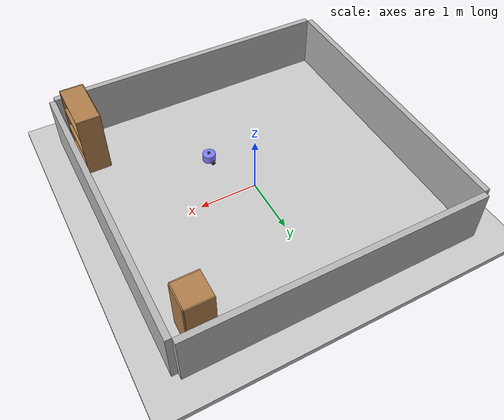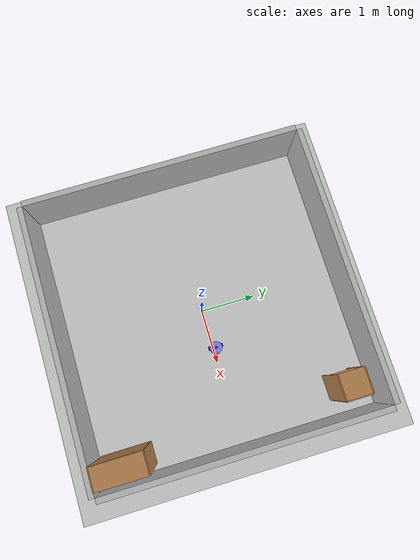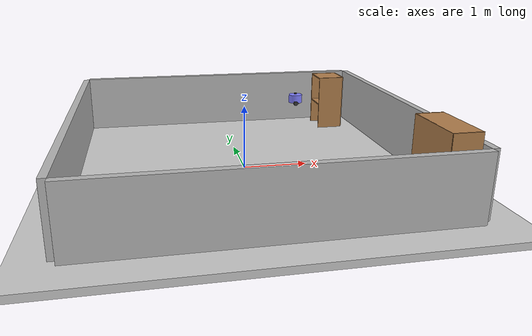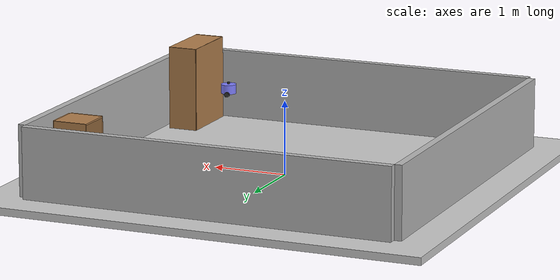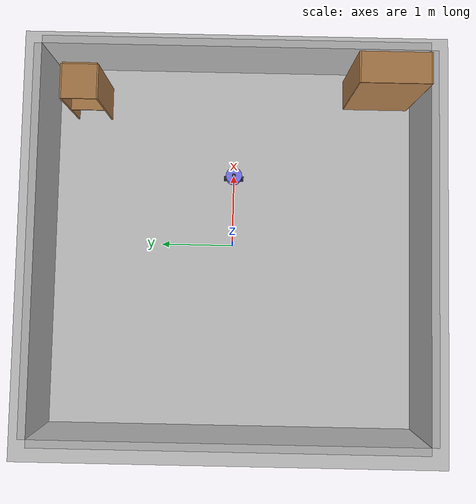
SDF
<sdf version="1.9">
 <world name="amazeworld">
  <physics name="1ms" type="ignored">
   <max_step_size>0.001</max_step_size>
   <real_time_factor>1.0</real_time_factor>
  </physics>
  <plugin filename="ignition-gazebo-physics-system" name="gz::sim::systems::Physics"/>
  <plugin filename="ignition-gazebo-sensors-system" name="gz::sim::systems::Sensors">
   <render_engine>ogre2</render_engine>
  </plugin>
  <plugin filename="ignition-gazebo-scene-broadcaster-system" name="gz::sim::systems::SceneBroadcaster"/>
  <light type="directional" name="sun">
   <pose>0 0 10 0 0 0</pose>
   <diffuse>0.8 0.8 0.8 1</diffuse>
   <specular>0.2 0.2 0.2 1</specular>
   <attenuation>
    <range>1000</range>
    <constant>0.9</constant>
    <linear>0.01</linear>
    <quadratic>0.001</quadratic>
   </attenuation>
   <direction>-0.5 0.1 -0.9</direction>
  </light>
  <model name="ground_plane">
   <static>true</static>
   <link name="link">
    <collision name="collision"><geometry><box><size>20 20 0.1</size></box></geometry></collision>
    <visual name="visual">
     <geometry><box><size>20 20 0.1</size></box></geometry>
     <material>
      <ambient>0.8 0.8 0.8 1</ambient>
      <diffuse>0.8 0.8 0.8 1</diffuse>
      <specular>0.8 0.8 0.8 1</specular>
     </material>
    </visual>
   </link>
  </model>
  <model name="Bookshelf">
   <static>1</static>
   <link name="link">
    <inertial><mass>1</mass></inertial>
    <collision name="back">
     <pose>0 0.005 0.6 0 -0 0</pose>
     <geometry><box><size>0.9 0.01 1.2</size></box></geometry>
    </collision>
    <visual name="visual1">
     <pose>0 0.005 0.6 0 -0 0</pose>
     <geometry><box><size>0.9 0.01 1.2</size></box></geometry>
     <material>
      <diffuse>1 1 1 1</diffuse>
      <script><uri>file://media/materials/scripts/gazebo.material</uri><name>Gazebo/Wood</name></script>
      <pbr>
       <metal>
        <albedo_map>https://fuel.gazebosim.org/1.0/openrobotics/models/bookshelf/3/files/bookshelf_diffuse.jpg</albedo_map>
       </metal>
      </pbr>
     </material>
    </visual>
    <collision name="left_side">
     <pose>0.45 -0.195 0.6 0 -0 0</pose>
     <geometry><box><size>0.02 0.4 1.2</size></box></geometry>
    </collision>
    <visual name="visual2">
     <pose>0.45 -0.195 0.6 0 -0 0</pose>
     <geometry><box><size>0.02 0.4 1.2</size></box></geometry>
     <material>
      <diffuse>1 1 1 1</diffuse>
      <script><uri>file://media/materials/scripts/gazebo.material</uri><name>Gazebo/Wood</name></script>
      <pbr>
       <metal>
        <albedo_map>https://fuel.gazebosim.org/1.0/openrobotics/models/bookshelf/3/files/bookshelf_diffuse.jpg</albedo_map>
       </metal>
      </pbr>
     </material>
    </visual>
    <collision name="right_side">
     <pose>-0.45 -0.195 0.6 0 -0 0</pose>
     <geometry><box><size>0.02 0.4 1.2</size></box></geometry>
    </collision>
    <visual name="visual3">
     <pose>-0.45 -0.195 0.6 0 -0 0</pose>
     <geometry><box><size>0.02 0.4 1.2</size></box></geometry>
     <material>
      <diffuse>1 1 1 1</diffuse>
      <script><uri>file://media/materials/scripts/gazebo.material</uri><name>Gazebo/Wood</name></script>
      <pbr>
       <metal>
        <albedo_map>https://fuel.gazebosim.org/1.0/openrobotics/models/bookshelf/3/files/bookshelf_diffuse.jpg</albedo_map>
       </metal>
      </pbr>
     </material>
    </visual>
    <collision name="bottom">
     <pose>0 -0.195 0.03 0 -0 0</pose>
     <geometry><box><size>0.88 0.4 0.06</size></box></geometry>
    </collision>
    <visual name="visual4">
     <pose>0 -0.195 0.03 0 -0 0</pose>
     <geometry><box><size>0.88 0.4 0.06</size></box></geometry>
     <material>
      <diffuse>1 1 1 1</diffuse>
      <script><uri>file://media/materials/scripts/gazebo.material</uri><name>Gazebo/Wood</name></script>
      <pbr>
       <metal>
        <albedo_map>https://fuel.gazebosim.org/1.0/openrobotics/models/bookshelf/3/files/bookshelf_diffuse.jpg</albedo_map>
       </metal>
      </pbr>
     </material>
    </visual>
    <collision name="top">
     <pose>0 -0.195 1.19 0 -0 0</pose>
     <geometry><box><size>0.88 0.4 0.02</size></box></geometry>
    </collision>
    <visual name="visual5">
     <pose>0 -0.195 1.19 0 -0 0</pose>
     <geometry><box><size>0.88 0.4 0.02</size></box></geometry>
     <material>
      <diffuse>1 1 1 1</diffuse>
      <script><uri>file://media/materials/scripts/gazebo.material</uri><name>Gazebo/Wood</name></script>
      <pbr>
       <metal>
        <albedo_map>https://fuel.gazebosim.org/1.0/openrobotics/models/bookshelf/3/files/bookshelf_diffuse.jpg</albedo_map>
       </metal>
      </pbr>
     </material>
    </visual>
    <collision name="low_shelf">
     <pose>0 -0.195 0.43 0 -0 0</pose>
     <geometry><box><size>0.88 0.4 0.02</size></box></geometry>
    </collision>
    <visual name="visual6">
     <pose>0 -0.195 0.43 0 -0 0</pose>
     <geometry><box><size>0.88 0.4 0.02</size></box></geometry>
     <material>
      <diffuse>1 1 1 1</diffuse>
      <script><uri>file://media/materials/scripts/gazebo.material</uri><name>Gazebo/Wood</name></script>
      <pbr>
       <metal>
        <albedo_map>https://fuel.gazebosim.org/1.0/openrobotics/models/bookshelf/3/files/bookshelf_diffuse.jpg</albedo_map>
       </metal>
      </pbr>
     </material>
    </visual>
    <collision name="high_shelf">
     <pose>0 -0.195 0.8 0 -0 0</pose>
     <geometry><box><size>0.88 0.4 0.02</size></box></geometry>
    </collision>
    <visual name="visual7">
     <pose>0 -0.195 0.8 0 -0 0</pose>
     <geometry><box><size>0.88 0.4 0.02</size></box></geometry>
     <material>
      <diffuse>1 1 1 1</diffuse>
      <script><uri>file://media/materials/scripts/gazebo.material</uri><name>Gazebo/Wood</name></script>
      <pbr>
       <metal>
        <albedo_map>https://fuel.gazebosim.org/1.0/openrobotics/models/bookshelf/3/files/bookshelf_diffuse.jpg</albedo_map>
       </metal>
      </pbr>
     </material>
    </visual>
   </link>
   <pose>2.0 -2.0 0 0 -0 1.5708</pose>
  </model>
  <model name="cabinet">
   <static>1</static>
   <link name="cabinet_bottom_plate">
    <inertial>
     <pose>0 0 -1 0 -0 0</pose>
     <inertia><ixx>2.05</ixx><ixy>0</ixy><ixz>0</ixz><iyy>2.05</iyy><iyz>0</iyz><izz>2.05</izz></inertia>
     <mass>25</mass>
    </inertial>
    <collision name="cabinet_bottom_plate_geom">
     <pose>0 0 0.01 0 -0 0</pose>
     <geometry><box><size>0.45 0.45 0.02</size></box></geometry>
    </collision>
    <visual name="cabinet_bottom_plate_geom_visual">
     <pose>0 0 0.01 0 -0 0</pose>
     <geometry><box><size>0.45 0.45 0.02</size></box></geometry>
     <material>
      <script><uri>file://media/materials/scripts/gazebo.material</uri><name>Gazebo/Wood</name></script>
     </material>
    </visual>
    <collision name="cabinet_bottom_plate_geom_cabinet_back_plate">
     <pose>0.235 0 0.51 0 -0 0</pose>
     <geometry><box><size>0.02 0.45 1.02</size></box></geometry>
    </collision>
    <visual name="cabinet_bottom_plate_geom_cabinet_back_plate_visual">
     <pose>0.235 0 0.51 0 -0 0</pose>
     <geometry><box><size>0.02 0.45 1.02</size></box></geometry>
     <material>
      <script><uri>file://media/materials/scripts/gazebo.material</uri><name>Gazebo/Wood</name></script>
     </material>
    </visual>
    <collision name="cabinet_bottom_plate_geom_cabinet_left_plate">
     <pose>0 0.235 0.51 0 -0 0</pose>
     <geometry><box><size>0.45 0.02 1.02</size></box></geometry>
    </collision>
    <visual name="cabinet_bottom_plate_geom_cabinet_left_plate_visual">
     <pose>0 0.235 0.51 0 -0 0</pose>
     <geometry><box><size>0.45 0.02 1.02</size></box></geometry>
     <material>
      <script><uri>file://media/materials/scripts/gazebo.material</uri><name>Gazebo/Wood</name></script>
     </material>
    </visual>
    <collision name="cabinet_bottom_plate_geom_cabinet_middle_plate">
     <pose>0 0 0.51 0 -0 0</pose>
     <geometry><box><size>0.45 0.45 0.02</size></box></geometry>
    </collision>
    <visual name="cabinet_bottom_plate_geom_cabinet_middle_plate_visual">
     <pose>0 0 0.51 0 -0 0</pose>
     <geometry><box><size>0.45 0.45 0.02</size></box></geometry>
     <material>
      <script><uri>file://media/materials/scripts/gazebo.material</uri><name>Gazebo/Wood</name></script>
     </material>
    </visual>
    <collision name="cabinet_bottom_plate_geom_cabinet_right_plate">
     <pose>0 -0.235 0.51 0 -0 0</pose>
     <geometry><box><size>0.45 0.02 1.02</size></box></geometry>
    </collision>
    <visual name="cabinet_bottom_plate_geom_cabinet_right_plate_visual">
     <pose>0 -0.235 0.51 0 -0 0</pose>
     <geometry><box><size>0.45 0.02 1.02</size></box></geometry>
     <material>
      <script><uri>file://media/materials/scripts/gazebo.material</uri><name>Gazebo/Wood</name></script>
     </material>
    </visual>
    <collision name="cabinet_bottom_plate_geom_cabinet_top_plate">
     <pose>0 0 1.01 0 -0 0</pose>
     <geometry><box><size>0.45 0.45 0.02</size></box></geometry>
    </collision>
    <visual name="cabinet_bottom_plate_geom_cabinet_top_plate_visual">
     <pose>0 0 1.01 0 -0 0</pose>
     <geometry><box><size>0.45 0.45 0.02</size></box></geometry>
     <material>
      <script><uri>file://media/materials/scripts/gazebo.material</uri><name>Gazebo/Wood</name></script>
     </material>
    </visual>
   </link>
   <pose>2.0 2.0 0 0 -0 0</pose>
  </model>
  <model name="room_wall_2x5">
   <link name="link">
    <visual name="visual">
     <geometry><box><size>0.1 5 1</size></box></geometry>
     <material>
      <script>
       <uri>https://fuel.gazebosim.org/1.0/makerspet/models/room_wall_2x5m/1/files/material/script</uri>
       <uri>https://fuel.gazebosim.org/1.0/makerspet/models/room_wall_2x5m/1/files/material/textures</uri>
       <name>Custom/room_wall_2x5</name>
      </script>
     </material>
    </visual>
    <collision name="collision"><geometry><box><size>0.1 5 2</size></box></geometry></collision>
   </link>
   <static>1</static>
   <pose>-2.55 0.0 0.5 0 -0 0</pose>
  </model>
  <model name="room_wall_2x5_0">
   <link name="link">
    <visual name="visual">
     <geometry><box><size>0.1 5 1</size></box></geometry>
     <material>
      <script>
       <uri>https://fuel.gazebosim.org/1.0/makerspet/models/room_wall_2x5m/1/files/material/script</uri>
       <uri>https://fuel.gazebosim.org/1.0/makerspet/models/room_wall_2x5m/1/files/material/textures</uri>
       <name>Custom/room_wall_2x5</name>
      </script>
     </material>
    </visual>
    <collision name="collision"><geometry><box><size>0.1 5 2</size></box></geometry></collision>
   </link>
   <static>1</static>
   <pose>2.55 -0.0 0.5 0 -0 0</pose>
  </model>
  <model name="room_wall_2x5_1">
   <link name="link">
    <visual name="visual">
     <geometry><box><size>0.1 5 1</size></box></geometry>
     <material>
      <script>
       <uri>https://fuel.gazebosim.org/1.0/makerspet/models/room_wall_2x5m/1/files/material/script</uri>
       <uri>https://fuel.gazebosim.org/1.0/makerspet/models/room_wall_2x5m/1/files/material/textures</uri>
       <name>Custom/room_wall_2x5</name>
      </script>
     </material>
    </visual>
    <collision name="collision"><geometry><box><size>0.1 5 2</size></box></geometry></collision>
   </link>
   <static>1</static>
   <pose>0.0 -2.55 0.5 0 -0 1.57079</pose>
  </model>
  <model name="room_wall_2x5_2">
   <link name="link">
    <visual name="visual">
     <geometry><box><size>0.1 5 1</size></box></geometry>
     <material>
      <script>
       <uri>https://fuel.gazebosim.org/1.0/makerspet/models/room_wall_2x5m/1/files/material/script</uri>
       <uri>https://fuel.gazebosim.org/1.0/makerspet/models/room_wall_2x5m/1/files/material/textures</uri>
       <name>Custom/room_wall_2x5</name>
      </script>
     </material>
    </visual>
    <collision name="collision"><geometry><box><size>0.1 5 2</size></box></geometry></collision>
   </link>
   <static>1</static>
   <pose>0.0 2.55 0.5 0 -0 1.57079</pose>
  </model>
  <model name="amazebot">
   <self_collide>true</self_collide>
   <pose>0.8 0.0 1.0 0 0 0</pose>
   <include merge="true">
    <uri>/mnt/shared_files/mycode/d2lros/amazebot/src/navigation/models/amazebot.sdf</uri>
   </include>
   <plugin filename="ignition-gazebo-pose-publisher-system" name="ignition::gazebo::systems::PosePublisher">
    <publish_link_pose>true</publish_link_pose>
    <use_pose_vector_msg>true</use_pose_vector_msg>
    <static_publisher>true</static_publisher>
    <static_update_frequency>1</static_update_frequency>
   </plugin>
   <plugin filename="ignition-gazebo-odometry-publisher-system" name="ignition::gazebo::systems::OdometryPublisher">
    <odom_frame>amazebot/odom</odom_frame>
    <robot_base_frame>amazebot</robot_base_frame>
   </plugin>
  </model>
 </world>
</sdf>

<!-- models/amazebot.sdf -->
<sdf version="1.9">
  <model name='amazebot'>

  	<!-- Robot Footprint -->
  	<link name="base_footprint">
      <pose>0.0 0.0 0.0 0 0 0</pose>
    </link>

		<!-- base link -->
    <link name='base_link'>
      <pose>0.0 0.0 0.092 0 -0 0</pose>
      <inertial>
        <mass>0.2</mass>
        <inertia>
          <ixx>0.0122666</ixx>
          <ixy>0</ixy>
          <ixz>0</ixz>
          <iyy>0.0122666</iyy>
          <iyz>0</iyz>
          <izz>0.02</izz>
      	</inertia>
      </inertial>
      <visual name='visual_basic_link'>
        <geometry>
          <cylinder>
						<length>0.12</length>
						<radius>0.10</radius>
					</cylinder>
        </geometry>
        <material>
          <ambient>0.5 0.5 1.0 1</ambient>
          <diffuse>0.5 0.5 1.0 1</diffuse>
          <specular>0.0 0.0 1.0 1</specular>
        </material>
      </visual>
      <collision name='collision_basic_link'>
        <geometry>
					<cylinder>
						<length>0.12</length>
						<radius>0.10</radius>
					</cylinder>
        </geometry>
      </collision>
    </link>

		<!-- left wheel link -->
    <link name='left_wheel_link'>
      <pose>-0.02 0.10 0.032 -1.5707963267948966 0 0</pose>
      <inertial>
        <mass>0.2</mass>
        <inertia>
          <ixx>0.000190416666667</ixx>
          <ixy>0</ixy>
          <ixz>0</ixz>
          <iyy>0.0001904</iyy>
          <iyz>0</iyz>
          <izz>0.00036</izz>
        </inertia>
      </inertial>
      <visual name='visual_left_wheel_link'>
        <geometry>
					<cylinder>
						<length>0.04</length>
						<radius>0.032</radius>
					</cylinder>
        </geometry>
        <material>
          <ambient>0.2 0.2 0.2 1</ambient>
          <diffuse>0.2 0.2 0.2 1</diffuse>
          <specular>0.2 0.2 0.2 1</specular>
        </material>
      </visual>
      <collision name='collision_left_wheel_link'>
        <geometry>
					<cylinder>
						<length>0.04</length>
						<radius>0.032</radius>
					</cylinder>
        </geometry>
      </collision>
    </link>

		<!-- right wheel link -->
    <link name='right_wheel_link'>
      <pose>-0.02 -0.10 0.032 -1.5707963267948966 0 0</pose>
      <inertial>
        <mass>0.2</mass>
        <inertia>
          <ixx>0.000190416666667</ixx>
          <ixy>0</ixy>
          <ixz>0</ixz>
          <iyy>0.0001904</iyy>
          <iyz>0</iyz>
          <izz>0.00036</izz>
        </inertia>
      </inertial>
      <visual name='visual_right_wheel_link'>
        <geometry>
					<cylinder>
						<length>0.04</length>
						<radius>0.032</radius>
					</cylinder>
        </geometry>
        <material>
          <ambient>0.2 0.2 0.2 1</ambient>
          <diffuse>0.2 0.2 0.2 1</diffuse>
          <specular>0.2 0.2 0.2 1</specular>
        </material>
      </visual>
      <collision name='collision_right_wheel_link'>
        <geometry>
					<cylinder>
						<length>0.04</length>
						<radius>0.032</radius>
					</cylinder>
        </geometry>
      </collision>
    </link>

		<!-- caster link -->
    <link name='caster_link'>
      <pose>0.06 0.0 0.016 0 -0 0</pose>
      <inertial>
        <mass>0.02</mass>
        <inertia>
          <ixx>0.000190416666667</ixx>
          <ixy>0</ixy>
          <ixz>0</ixz>
          <iyy>0.0001904</iyy>
          <iyz>0</iyz>
          <izz>0.00036</izz>
        </inertia>
      </inertial>
      <visual name='visual_caster_links'>
        <geometry>
          <sphere>
            <radius>0.016</radius>
          </sphere>
        </geometry>
        <material>
          <ambient>0.2 0.2 0.2 1</ambient>
          <diffuse>0.2 0.2 0.2 1</diffuse>
          <specular>0.2 0.2 0.2 1</specular>
        </material>
      </visual>
      <collision name='collision_caster_link'>
        <geometry>
          <sphere>
            <radius>0.016</radius>
          </sphere>
        </geometry>
      </collision>
    </link>

		<!-- imu link -->
    <link name='imu_link'>
      <pose>0.0 0.0 0.112 0 0 0</pose>
      <inertial>
        <mass>0.1</mass>
        <inertia>
          <ixx>0.000190416666667</ixx>
          <ixy>0</ixy>
          <ixz>0</ixz>
          <iyy>0.0001904</iyy>
          <iyz>0</iyz>
          <izz>0.00036</izz>
        </inertia>
      </inertial>
      <visual name='visual_imu_link'>
        <geometry>
					<box>
						<size>0.02 0.02 0.02</size>
					</box>
        </geometry>
        <material>
          <ambient>0.2 0.2 0.2 1</ambient>
          <diffuse>0.2 0.2 0.2 1</diffuse>
          <specular>0.2 0.2 0.2 1</specular>
        </material>
      </visual>
      <collision name='collision_imu_link'>
        <geometry>
					<box>
						<size>0.02 0.02 0.02</size>
					</box>
        </geometry>
      </collision>

    	<sensor name="imu_sensor" type="imu">
    		<plugin filename="ignition-gazebo-imu-system" name="ignition::gazebo::systems::Imu">
    			<initial_orientation_as_reference>false</initial_orientation_as_reference>
    		</plugin>
    		<topic>imu</topic>
    		<always_on>true</always_on>
    		<update_rate>100.0</update_rate>
    		<visualize>true</visualize>
    		<imu>
      		<angular_velocity>
      		  <x>
      		    <noise type="gaussian">
      		      <mean>0.0</mean>
      		      <stddev>2e-4</stddev>
      		      <bias_mean>0.0000075</bias_mean>
      		      <bias_stddev>0.0000008</bias_stddev>
      		    </noise>
      		  </x>
      		  <y>
      		    <noise type="gaussian">
      		      <mean>0.0</mean>
      		      <stddev>2e-4</stddev>
      		      <bias_mean>0.0000075</bias_mean>
      		      <bias_stddev>0.0000008</bias_stddev>
      		    </noise>
      		  </y>
      		  <z>
      		    <noise type="gaussian">
      		      <mean>0.0</mean>
      		      <stddev>2e-4</stddev>
      		      <bias_mean>0.0000075</bias_mean>
      		      <bias_stddev>0.0000008</bias_stddev>
      		    </noise>
      		  </z>
      		</angular_velocity>
      		<linear_acceleration>
      		  <x>
      		    <noise type="gaussian">
      		      <mean>0.0</mean>
      		      <stddev>1.7e-2</stddev>
      		      <bias_mean>0.01</bias_mean>
      		      <bias_stddev>0.001</bias_stddev>
      		    </noise>
      		  </x>
      		  <y>
      		    <noise type="gaussian">
      		      <mean>0.0</mean>
      		      <stddev>1.7e-2</stddev>
      		      <bias_mean>0.01</bias_mean>
      		      <bias_stddev>0.001</bias_stddev>
      		    </noise>
      		  </y>
      		  <z>
      		    <noise type="gaussian">
      		      <mean>0.0</mean>
      		      <stddev>1.7e-2</stddev>
      		      <bias_mean>0.01</bias_mean>
      		      <bias_stddev>0.001</bias_stddev>
      		    </noise>
      		  </z>
      		</linear_acceleration>
    		</imu>
    	</sensor>

    </link>

		<!-- lidar link -->
		<link name='lidar_link'>
      <pose>0.0 0.0 0.167 0 0 0</pose>
      <inertial>
        <mass>0.1</mass>
        <inertia>
          <ixx>0.000190416666667</ixx>
          <ixy>0</ixy>
          <ixz>0</ixz>
          <iyy>0.0001904</iyy>
          <iyz>0</iyz>
          <izz>0.00036</izz>
        </inertia>
      </inertial>
      <visual name='visual_lidar_link'>
        <geometry>
					<cylinder>
						<length>0.02</length>
						<radius>0.02</radius>
					</cylinder>
				</geometry>
        <material>
					<ambient>0.2 0.2 0.2 1</ambient>
					<diffuse>0.2 0.2 0.2 1</diffuse>
					<specular>0.2 0.2 0.2 1</specular>
				</material>
      </visual>
      <collision name='collision_lidar_link'>
        <geometry>
					<cylinder>
						<length>0.02</length>
						<radius>0.02</radius>
					</cylinder>
				</geometry>
      </collision>

      <sensor name='lidar_sensor' type='gpu_lidar'>
        <pose>0 0 0 0 0 0</pose>
        <topic>lidar</topic>
        <update_rate>10</update_rate>
        <lidar>
          <scan>
            <horizontal>
              <samples>640</samples>
              <resolution>1</resolution>
              <min_angle>-1.396263</min_angle>
              <max_angle>1.396263</max_angle>
            </horizontal>
            <vertical>
              <samples>1</samples>
              <resolution>1</resolution>
              <min_angle>0.0</min_angle>
              <max_angle>0.0</max_angle>
            </vertical>
          </scan>
          <range>
            <min>0.08</min>
            <max>10.0</max>
            <resolution>0.01</resolution>
          </range>
        </lidar>
        <visualize>true</visualize>
      </sensor>

    </link>

		<!-- base joint -->
  	<joint name="base_joint" type="fixed">
  	  <parent>base_footprint</parent>
  	  <child>base_link</child>
  	</joint>

		<!-- left wheel joint -->
    <joint name='left_wheel_joint' type='revolute'>
      <parent>base_link</parent>
      <child>left_wheel_link</child>
			<axis>
        <xyz>0 0 1</xyz>
        <limit>
          <lower>-1.79769e+308</lower>
          <upper>1.79769e+308</upper>
        </limit>
      </axis>
    </joint>

		<!-- right wheel joint -->
    <joint name='right_wheel_joint' type='revolute'>
      <parent>base_link</parent>
      <child>right_wheel_link</child>
			<axis>
        <xyz>0 0 1</xyz>
        <limit>
          <lower>-1.79769e+308</lower>
          <upper>1.79769e+308</upper>
        </limit>
      </axis>
    </joint>

		<!-- caster joint -->
    <joint name='caster_joint' type='fixed'>
      <parent>base_link</parent>
      <child>caster_link</child>
    </joint>

		<!-- imu joint -->
    <joint name='imu_joint' type='fixed'>
      <parent>base_link</parent>
      <child>imu_link</child>
		</joint>

		<!-- lidar joint -->
		<joint name='lidar_joint' type='fixed'>
      <parent>base_link</parent>
      <child>lidar_link</child>
		</joint>

    <plugin
      filename="ignition-gazebo-diff-drive-system"
      name="ignition::gazebo::systems::DiffDrive">
      <left_joint>left_wheel_joint</left_joint>
      <right_joint>right_wheel_joint</right_joint>
      <wheel_separation>0.20</wheel_separation>
      <wheel_radius>0.032</wheel_radius>
      <odom_publish_frequency>1</odom_publish_frequency>
      <max_linear_acceleration>1</max_linear_acceleration>
      <min_linear_acceleration>-1</min_linear_acceleration>
      <max_angular_acceleration>2</max_angular_acceleration>
      <min_angular_acceleration>-2</min_angular_acceleration>
      <max_linear_velocity>1.5</max_linear_velocity>
      <min_linear_velocity>-1.5</min_linear_velocity>
      <max_angular_velocity>1</max_angular_velocity>
      <min_angular_velocity>-1</min_angular_velocity>
    </plugin>

    </model>
</sdf>
